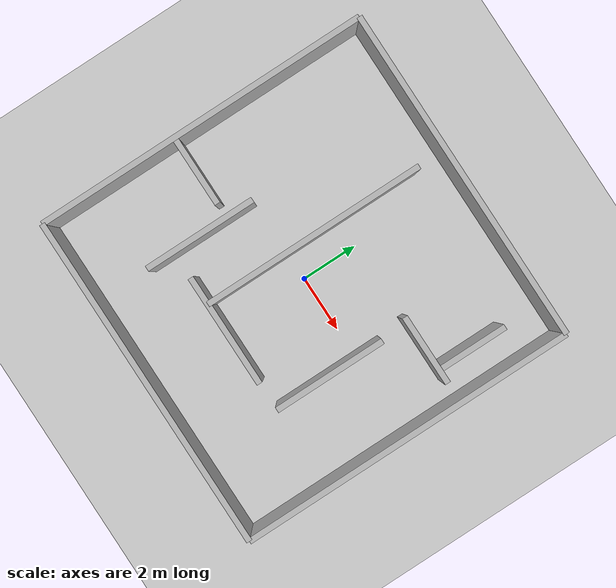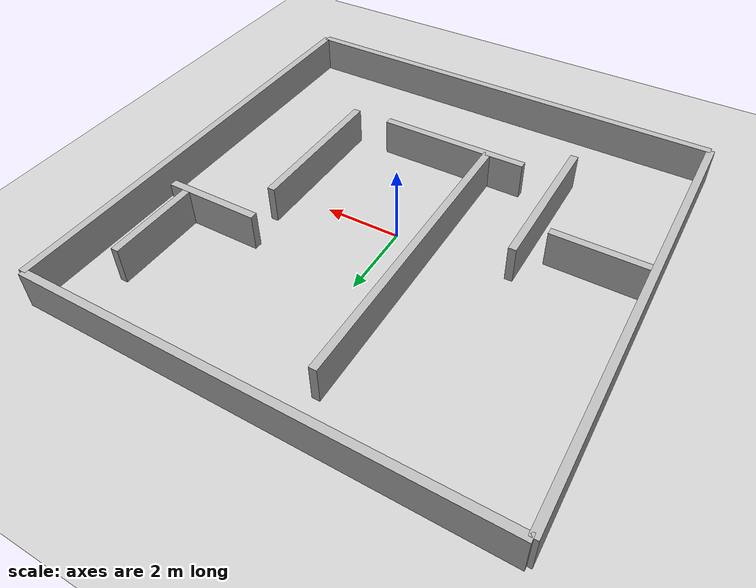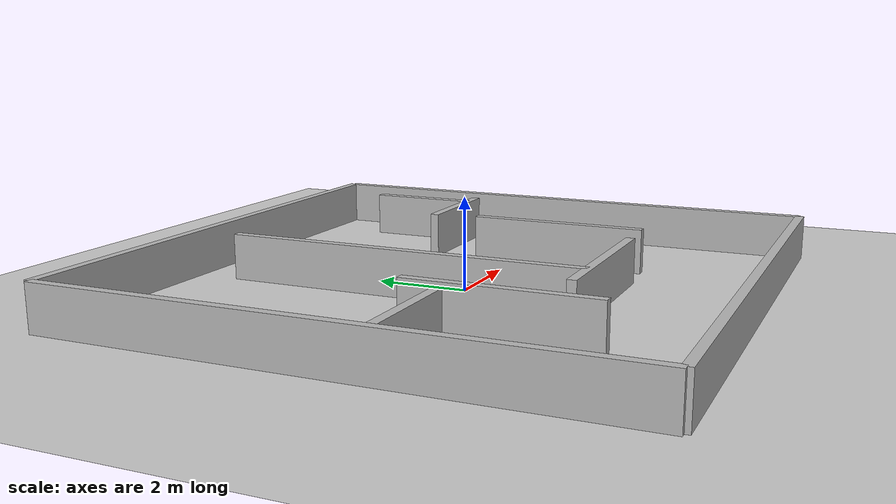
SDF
<?xml version="1.0" ?>
<sdf version="1.6">

  <world name="simple_world">

    <!-- Sun -->
    <include>
      <uri>model://sun</uri>
    </include>

    <!-- Ground -->
    <include>
      <uri>model://ground_plane</uri>
    </include>

    <!-- ================= OUTER WALLS ================= -->

    <!-- Top -->
    <model name="wall_top">
      <static>true</static>
      <link name="link">
        <collision name="collision">
          <geometry><box><size>12 0.2 1</size></box></geometry>
        </collision>
        <visual name="visual">
          <geometry><box><size>12 0.2 1</size></box></geometry>
        </visual>
      </link>
      <pose>0 6 0.5 0 0 0</pose>
    </model>

    <!-- Bottom -->
    <model name="wall_bottom">
      <static>true</static>
      <link name="link">
        <collision name="collision">
          <geometry><box><size>12 0.2 1</size></box></geometry>
        </collision>
        <visual name="visual">
          <geometry><box><size>12 0.2 1</size></box></geometry>
        </visual>
      </link>
      <pose>0 -6 0.5 0 0 0</pose>
    </model>

    <!-- Left -->
    <model name="wall_left">
      <static>true</static>
      <link name="link">
        <collision name="collision">
          <geometry><box><size>0.2 12 1</size></box></geometry>
        </collision>
        <visual name="visual">
          <geometry><box><size>0.2 12 1</size></box></geometry>
        </visual>
      </link>
      <pose>-6 0 0.5 0 0 0</pose>
    </model>

    <!-- Right -->
    <model name="wall_right">
      <static>true</static>
      <link name="link">
        <collision name="collision">
          <geometry><box><size>0.2 12 1</size></box></geometry>
        </collision>
        <visual name="visual">
          <geometry><box><size>0.2 12 1</size></box></geometry>
        </visual>
      </link>
      <pose>6 0 0.5 0 0 0</pose>
    </model>

    <!-- ================= START AREA ================= -->

    <model name="start_vertical">
      <static>true</static>
      <link name="link">
        <collision name="collision">
          <geometry><box><size>0.2 4 1</size></box></geometry>
        </collision>
        <visual name="visual">
          <geometry><box><size>0.2 4 1</size></box></geometry>
        </visual>
      </link>
      <pose>-3 -2 0.5 0 0 0</pose>
    </model>

    <model name="start_horizontal">
      <static>true</static>
      <link name="link">
        <collision name="collision">
          <geometry><box><size>2.5 0.2 1</size></box></geometry>
        </collision>
        <visual name="visual">
          <geometry><box><size>2.5 0.2 1</size></box></geometry>
        </visual>
      </link>
      <pose>-4.75 -1 0.5 0 0 0</pose>
    </model>

    <!-- ================= CENTRE WALL ================= -->

    <model name="center_wall">
      <static>true</static>
      <link name="link">
        <collision name="collision">
          <geometry><box><size>0.2 8 1</size></box></geometry>
        </collision>
        <visual name="visual">
          <geometry><box><size>0.2 8 1</size></box></geometry>
        </visual>
      </link>
      <pose>-1 1 0.5 0 0 0</pose>
    </model>

    <!-- ================= LOWER CORRIDOR ================= -->

    <model name="lower_corridor">
      <static>true</static>
      <link name="link">
        <collision name="collision">
          <geometry><box><size>4 0.2 1</size></box></geometry>
        </collision>
        <visual name="visual">
          <geometry><box><size>4 0.2 1</size></box></geometry>
        </visual>
      </link>
      <pose>0 -3 0.5 0 0 0</pose>
    </model>

    <!-- ================= FOREST AREA ================= -->

    <model name="forest_wall">
      <static>true</static>
      <link name="link">
        <collision name="collision">
          <geometry><box><size>0.2 4 1</size></box></geometry>
        </collision>
        <visual name="visual">
          <geometry><box><size>0.2 4 1</size></box></geometry>
        </visual>
      </link>
      <pose>3 -1 0.5 0 0 0</pose>
    </model>

    <!-- ================= END AREA ================= -->

    <model name="end_horizontal">
      <static>true</static>
      <link name="link">
        <collision name="collision">
          <geometry><box><size>2.5 0.2 1</size></box></geometry>
        </collision>
        <visual name="visual">
          <geometry><box><size>2.5 0.2 1</size></box></geometry>
        </visual>
      </link>
      <pose>4 2 0.5 0 0 0</pose>
    </model>

    <model name="end_vertical">
      <static>true</static>
      <link name="link">
        <collision name="collision">
          <geometry><box><size>0.2 2.5 1</size></box></geometry>
        </collision>
        <visual name="visual">
          <geometry><box><size>0.2 2.5 1</size></box></geometry>
        </visual>
      </link>
      <pose>4.75 3.25 0.5 0 0 0</pose>
    </model>

  <plugin name="gazebo_ros_state" filename="libgazebo_ros_state.so"/>
  <plugin name="gazebo_ros_factory" filename="libgazebo_ros_factory.so"/>
</world>

</sdf>
